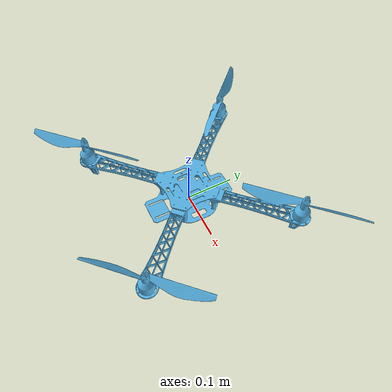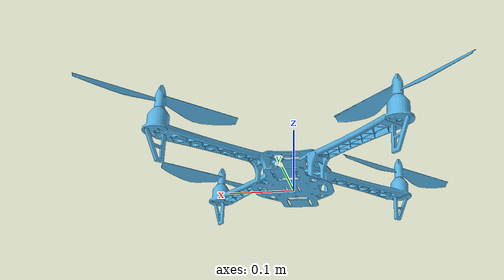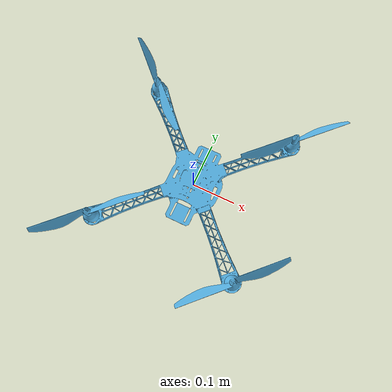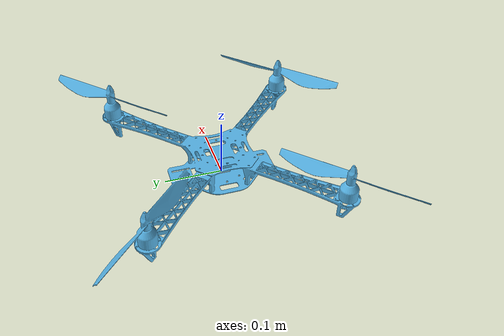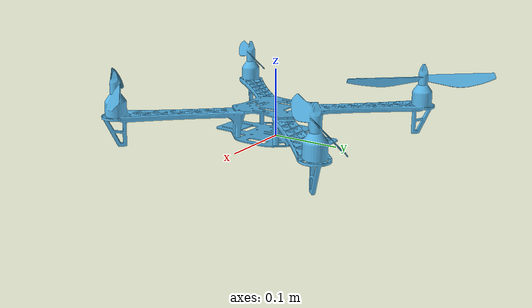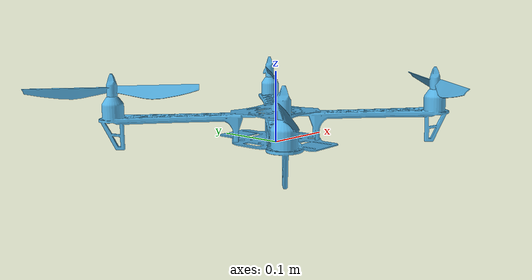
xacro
<?xml version="1.0" ?>
<robot name="sjtu_drone" xmlns:xacro="http://www.ros.org/wiki/xacro">

  <xacro:arg name="params_path" default="$(find sjtu_drone_bringup)/config/drone.yaml"/>
  <xacro:property name="params_path" value="$(arg params_path)"/>
  <xacro:property name="mp" value="${xacro.load_yaml(params_path)}"/>
  <xacro:property name="M_PI" value="3.14159265359" />

  <xacro:property name="tof_hfov"   value="1.2217"/>
  <xacro:property name="tof_vfov"   value="1.0472"/>
  <xacro:property name="tof_near"   value="0.2"/>
  <xacro:property name="tof_far"    value="2.5"/>
  <xacro:property name="tof_rate"   value="20"/>
  <xacro:property name="tof_width"  value="100"/>
  <xacro:property name="tof_height" value="100"/>

  <!-- 60° spacing for 6 sensors -->
  <xacro:property name="deg60"  value="1.0472"/>
  <xacro:property name="deg120" value="2.0944"/>
  <xacro:property name="deg180" value="3.14159"/>

  <!-- ═══════════════════════════════════════════════════════════
       MACRO: ToF sensor
  ═══════════════════════════════════════════════════════════ -->
  <xacro:macro name="tof_sensor" params="name xyz yaw">

    <joint name="${name}_joint" type="fixed">
      <origin rpy="0 0 ${yaw}" xyz="${xyz}"/>
      <parent link="base_link"/>
      <child link="${name}_link"/>
    </joint>
    <link name="${name}_link"/>

    <joint name="${name}_optical_joint" type="fixed">
      <origin rpy="-1.5708 0 -1.5708" xyz="0 0 0"/>
      <parent link="${name}_link"/>
      <child link="${name}_optical_link"/>
    </joint>
    <link name="${name}_optical_link"/>

    <gazebo reference="${name}_link">
      <sensor name="${name}" type="depth">
        <always_on>1</always_on>
        <visualize>1</visualize>
        <update_rate>${tof_rate}</update_rate>
        <camera>
          <horizontal_fov>${tof_hfov}</horizontal_fov>
          <vertical_fov>${tof_vfov}</vertical_fov>
          <image>
            <width>${tof_width}</width>
            <height>${tof_height}</height>
            <format>R8G8B8</format>
          </image>
          <clip>
            <near>${tof_near}</near>
            <far>${tof_far}</far>
          </clip>
          <noise>
            <type>gaussian</type>
            <mean>0.0</mean>
            <stddev>0.01</stddev>
          </noise>
        </camera>
        <plugin name="${name}_plugin" filename="libgazebo_ros_camera.so">
          <ros>
            <namespace>${mp['namespace']}</namespace>
          </ros>
          <camera_name>${name}</camera_name>
          <frame_name>${mp['namespace']}/${name}_optical_link</frame_name>
          <min_depth>${tof_near}</min_depth>
          <max_depth>${tof_far}</max_depth>
          <point_cloud_cutoff>${tof_near}</point_cloud_cutoff>
          <point_cloud_cutoff_max>${tof_far}</point_cloud_cutoff_max>
        </plugin>
      </sensor>
    </gazebo>

  </xacro:macro>

  <!-- ═══════════════════════════════════════════════════════════
       LINKS & JOINTS
  ═══════════════════════════════════════════════════════════ -->

  <link name="base_footprint"/>
  <joint name="base_footprint_joint" type="fixed">
    <origin rpy="0 0 0" xyz="0 0 0"/>
    <parent link="base_footprint"/>
    <child link="base_link"/>
  </joint>

  <!-- F450 drone body -->
  <link name="base_link">
    <inertial>
      <mass value="1.477"/>
      <origin rpy="0 0 0" xyz="0 0 0"/>
      <inertia ixx="0.1152" ixy="0" ixz="0" iyy="0.1152" iyz="0" izz="0.218"/>
    </inertial>
    <collision name="sjtu_drone_collision">
      <origin rpy="0 0 0" xyz="0 0 0.04"/>
      <geometry>
        <mesh filename="file://$(find sjtu_drone_description)/models/sjtu_drone/f450_quad_centered_scaled.stl"/>
      </geometry>
    </collision>
    <visual name="sjtu_drone_visual">
      <origin rpy="0 0 0" xyz="0 0 0.04"/>
      <geometry>
        <mesh filename="file://$(find sjtu_drone_description)/models/sjtu_drone/f450_quad_centered_scaled.stl"/>
      </geometry>
    </visual>
  </link>

  <!-- ── RGB-D FRONT Camera ──────────────────────────────────── -->
  <joint name="rgbd_cam_joint" type="fixed">
    <origin rpy="0 0 0" xyz="0.2 0 0"/>
    <parent link="base_link"/>
    <child link="rgbd_cam_link"/>
  </joint>
  <link name="rgbd_cam_link"/>

  <joint name="rgbd_cam_optical_joint" type="fixed">
    <origin rpy="-1.5708 0 -1.5708" xyz="0 0 0"/>
    <parent link="rgbd_cam_link"/>
    <child link="rgbd_cam_optical_link"/>
  </joint>
  <link name="rgbd_cam_optical_link"/>

  <!-- ── BOTTOM Camera ──────────────────────────────────────── -->
  <joint name="bottom_cam_joint" type="fixed">
    <origin rpy="0 ${M_PI/2} 0" xyz="0 0 -0.05"/>
    <parent link="base_link"/>
    <child link="bottom_cam_link"/>
  </joint>
  <link name="bottom_cam_link"/>

  <joint name="bottom_cam_optical_joint" type="fixed">
    <origin rpy="-1.5708 0 -1.5708" xyz="0 0 0"/>
    <parent link="bottom_cam_link"/>
    <child link="bottom_cam_optical_link"/>
  </joint>
  <link name="bottom_cam_optical_link"/>

  <xacro:tof_sensor name="tof_0" xyz="0.225 0 0"       yaw="0"/>
  <xacro:tof_sensor name="tof_1" xyz="0.113 0.195 0"   yaw="${deg60}"/>
  <xacro:tof_sensor name="tof_2" xyz="-0.113 0.195 0"  yaw="${deg120}"/>
  <xacro:tof_sensor name="tof_3" xyz="-0.225 0 0"      yaw="${deg180}"/>
  <xacro:tof_sensor name="tof_4" xyz="-0.113 -0.195 0" yaw="-${deg120}"/>
  <xacro:tof_sensor name="tof_5" xyz="0.113 -0.195 0"  yaw="-${deg60}"/>

  <!-- ═══════════════════════════════════════════════════════════
       DRONE FLIGHT PLUGIN
  ═══════════════════════════════════════════════════════════ -->
  <gazebo>
    <plugin name='simple_drone' filename='libplugin_drone.so'>
      <ros>
        <namespace>${mp['namespace']}</namespace>
        <remapping>cmd_vel:=cmd_vel</remapping>
        <remapping>imu:=imu</remapping>
      </ros>
      <bodyName>base_link</bodyName>
      <pub_odom>true</pub_odom>
      <rollpitchProportionalGain>${mp['rollpitchProportionalGain']}</rollpitchProportionalGain>
      <rollpitchDifferentialGain>${mp['rollpitchDifferentialGain']}</rollpitchDifferentialGain>
      <rollpitchLimit>${mp['rollpitchLimit']}</rollpitchLimit>
      <yawProportionalGain>${mp['yawProportionalGain']}</yawProportionalGain>
      <yawDifferentialGain>${mp['yawDifferentialGain']}</yawDifferentialGain>
      <yawLimit>${mp['yawLimit']}</yawLimit>
      <velocityXYProportionalGain>${mp['velocityXYProportionalGain']}</velocityXYProportionalGain>
      <velocityXYDifferentialGain>${mp['velocityXYDifferentialGain']}</velocityXYDifferentialGain>
      <velocityXYLimit>${mp['velocityXYLimit']}</velocityXYLimit>
      <velocityZProportionalGain>${mp['velocityZProportionalGain']}</velocityZProportionalGain>
      <velocityZIntegralGain>${mp['velocityZIntegralGain']}</velocityZIntegralGain>
      <velocityZDifferentialGain>${mp['velocityZDifferentialGain']}</velocityZDifferentialGain>
      <velocityZLimit>${mp['velocityZLimit']}</velocityZLimit>
      <positionXYProportionalGain>${mp['positionXYProportionalGain']}</positionXYProportionalGain>
      <positionXYDifferentialGain>${mp['positionXYDifferentialGain']}</positionXYDifferentialGain>
      <positionXYIntegralGain>${mp['positionXYIntegralGain']}</positionXYIntegralGain>
      <positionXYLimit>${mp['positionXYLimit']}</positionXYLimit>
      <positionZProportionalGain>${mp['positionZProportionalGain']}</positionZProportionalGain>
      <positionZDifferentialGain>${mp['positionZDifferentialGain']}</positionZDifferentialGain>
      <positionZIntegralGain>${mp['positionZIntegralGain']}</positionZIntegralGain>
      <positionZLimit>${mp['positionZLimit']}</positionZLimit>
      <maxForce>${mp['maxForce']}</maxForce>
      <motionSmallNoise>${mp['motionSmallNoise']}</motionSmallNoise>
      <motionDriftNoise>${mp['motionDriftNoise']}</motionDriftNoise>
      <motionDriftNoiseTime>${mp['motionDriftNoiseTime']}</motionDriftNoiseTime>
    </plugin>
  </gazebo>

  <!-- ═══════════════════════════════════════════════════════════
       IMU
  ═══════════════════════════════════════════════════════════ -->
  <gazebo reference="base_link">
    <sensor name='sensor_imu' type='imu'>
      <always_on>1</always_on>
      <visualize>0</visualize>
      <update_rate>100</update_rate>
      <pose>0 0 0 0 0 0</pose>
      <imu>
        <noise>
          <type>gaussian</type>
          <rate><mean>0</mean><stddev>0.01</stddev></rate>
          <accel><mean>0</mean><stddev>0.01</stddev></accel>
        </noise>
      </imu>
      <plugin name='imu' filename='libgazebo_ros_imu_sensor.so'>
        <ros>
          <namespace>${mp['namespace']}</namespace>
        </ros>
        <initial_orientation_as_reference>false</initial_orientation_as_reference>
        <frame_name>${mp['namespace']}/base_link</frame_name>
      </plugin>
    </sensor>
  </gazebo>

  <!-- ═══════════════════════════════════════════════════════════
       RGB-D FRONT CAMERA
  ═══════════════════════════════════════════════════════════ -->
  <gazebo reference="rgbd_cam_link">
    <sensor name="rgbd_camera" type="depth">
      <always_on>1</always_on>
      <visualize>1</visualize>
      <update_rate>30</update_rate>
      <camera>
        <horizontal_fov>1.047</horizontal_fov>
        <image>
          <width>640</width>
          <height>480</height>
          <format>R8G8B8</format>
        </image>
        <clip>
          <near>0.1</near>
          <far>10.0</far>
        </clip>
        <noise>
          <type>gaussian</type>
          <mean>0.0</mean>
          <stddev>0.005</stddev>
        </noise>
      </camera>
      <plugin name="rgbd_camera_plugin" filename="libgazebo_ros_camera.so">
        <ros>
          <namespace>${mp['namespace']}</namespace>
        </ros>
        <camera_name>rgbd</camera_name>
        <frame_name>${mp['namespace']}/rgbd_cam_optical_link</frame_name>
        <min_depth>0.1</min_depth>
        <max_depth>10.0</max_depth>
        <point_cloud_cutoff>0.1</point_cloud_cutoff>
        <point_cloud_cutoff_max>9.0</point_cloud_cutoff_max>
      </plugin>
    </sensor>
  </gazebo>

  <!-- ═══════════════════════════════════════════════════════════
       BOTTOM DEPTH CAMERA
  ═══════════════════════════════════════════════════════════ -->
  <gazebo reference="bottom_cam_link">
    <sensor name="bottom_camera" type="depth">
      <always_on>1</always_on>
      <visualize>1</visualize>
      <update_rate>${tof_rate}</update_rate>
      <camera>
        <horizontal_fov>${tof_hfov}</horizontal_fov>
        <vertical_fov>${tof_vfov}</vertical_fov>
        <image>
          <width>${tof_width}</width>
          <height>${tof_height}</height>
          <format>R8G8B8</format>
        </image>
        <clip>
          <near>${tof_near}</near>
          <far>${tof_far}</far>
        </clip>
        <noise>
          <type>gaussian</type>
          <mean>0.0</mean>
          <stddev>0.01</stddev>
        </noise>
      </camera>
      <plugin name="bottom_cam_plugin" filename="libgazebo_ros_camera.so">
        <ros>
          <namespace>${mp['namespace']}</namespace>
        </ros>
        <camera_name>bottom_cam</camera_name>
        <frame_name>${mp['namespace']}/bottom_cam_optical_link</frame_name>
        <min_depth>${tof_near}</min_depth>
        <max_depth>${tof_far}</max_depth>
        <point_cloud_cutoff>${tof_near}</point_cloud_cutoff>
        <point_cloud_cutoff_max>${tof_far}</point_cloud_cutoff_max>
      </plugin>
    </sensor>
  </gazebo>

  <!-- ═══════════════════════════════════════════════════════════
       COLLISION SENSOR
  ═══════════════════════════════════════════════════════════ -->
  <gazebo reference="base_link">
    <sensor name="collision_sensor" type="contact">
      <update_rate>100.0</update_rate>
      <always_on>true</always_on>
      <contact>
        <collision>base_footprint_fixed_joint_lump__sjtu_drone_collision_collision</collision>
      </contact>
      <plugin name="collision_plugin" filename="libgazebo_ros_bumper.so">
        <ros>
          <namespace>${mp['namespace']}</namespace>
        </ros>
        <frame_name>${mp['namespace']}/base_link</frame_name>
      </plugin>
    </sensor>
  </gazebo>

</robot>
